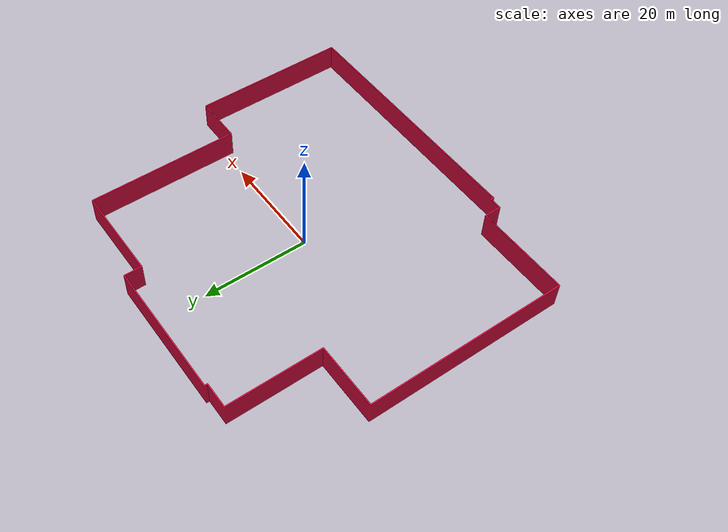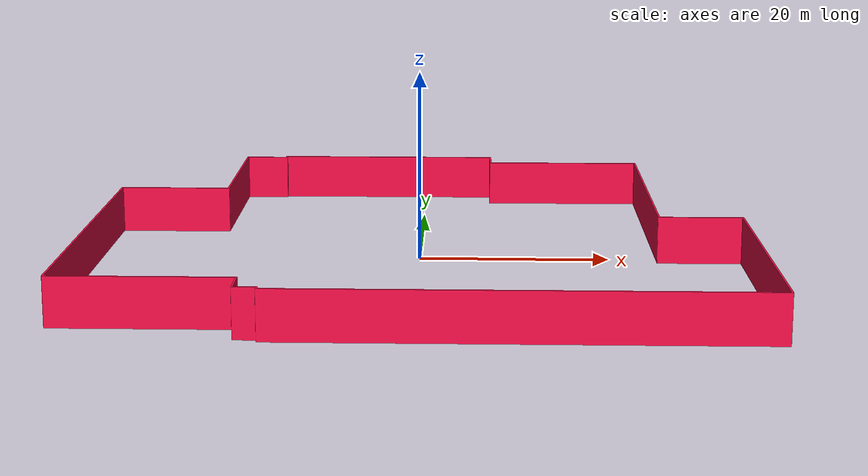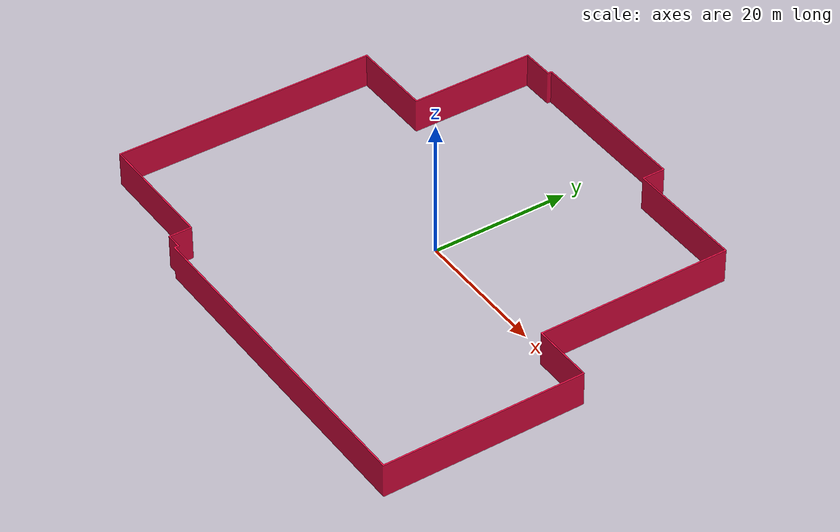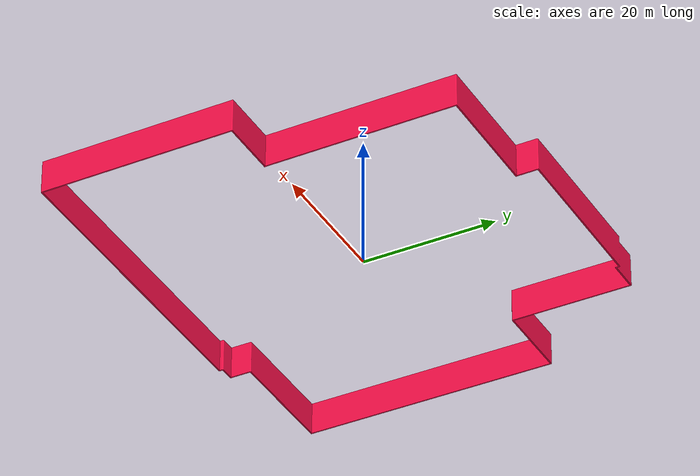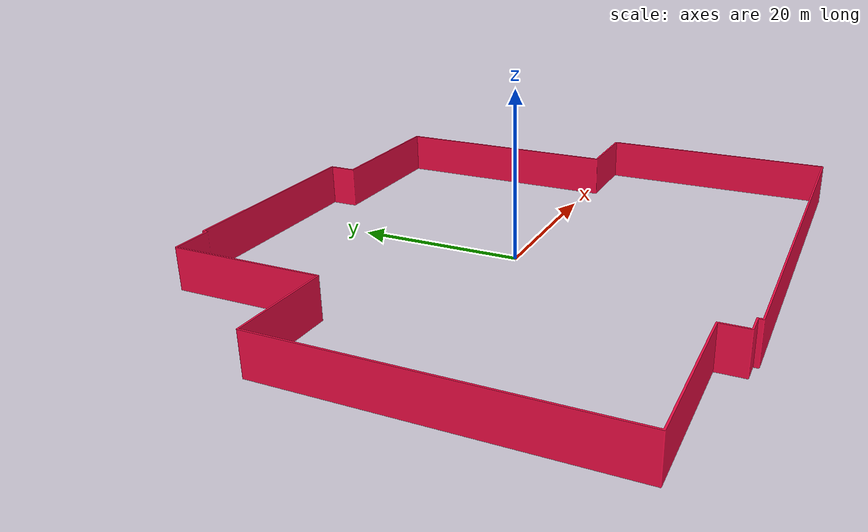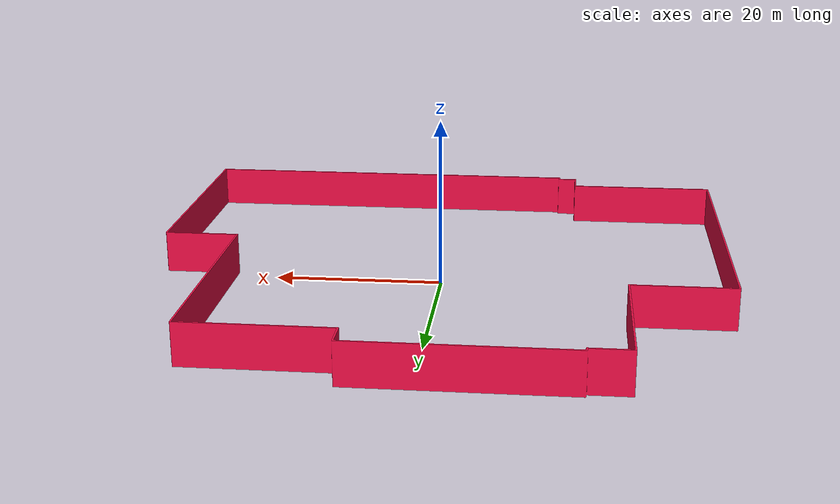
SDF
<?xml version="1.0" ?>
<sdf version="1.6">
  <model name="test_3_walls">
    <pose frame="">0 0 2.5 0 -0 0</pose>
    <static>1</static>
    <self_collide>0</self_collide>
    <allow_auto_disable>0</allow_auto_disable>
    <link name="mesh">
      <kinematic>0</kinematic>
      <gravity>1</gravity>
      <self_collide>0</self_collide>
      <collision name="collision">
        <geometry>
          <mesh>
            <uri>file:///home/agusmazzeo/Documents/UTN/Proyecto/Frontier-Exploration-with-a-prior/Notebooks/files/models/test_3_walls/meshes/nEpsSeziPR.stl</uri>
            <scale>1 1 1</scale>
          </mesh>
        </geometry>
        <pose frame="">-7.35734 -13.3729 -2.5 0 -0 0</pose>
        <max_contacts>20</max_contacts>
      </collision>
      <visual name="visual">
        <geometry>
          <mesh>
            <uri>file:///home/agusmazzeo/Documents/UTN/Proyecto/Frontier-Exploration-with-a-prior/Notebooks/files/models/test_3_walls/meshes/hkvEqMDRQe.stl</uri>
            <scale>1 1 1</scale>
          </mesh>
        </geometry>
        <material>
          <ambient>0.945098 0.0470588 0.270588 1</ambient>
          <diffuse>0.9450980392156862 0.047058823529411764 0.27058823529411763 1</diffuse>
        </material>
        <pose frame="">-7.35734 -13.3729 -2.5 0 -0 0</pose>
        <cast_shadows>1</cast_shadows>
        <transparency>0.0</transparency>
      </visual>
      <pose frame="">0 0 0 0 -0 0</pose>
    </link>
  </model>
</sdf>
